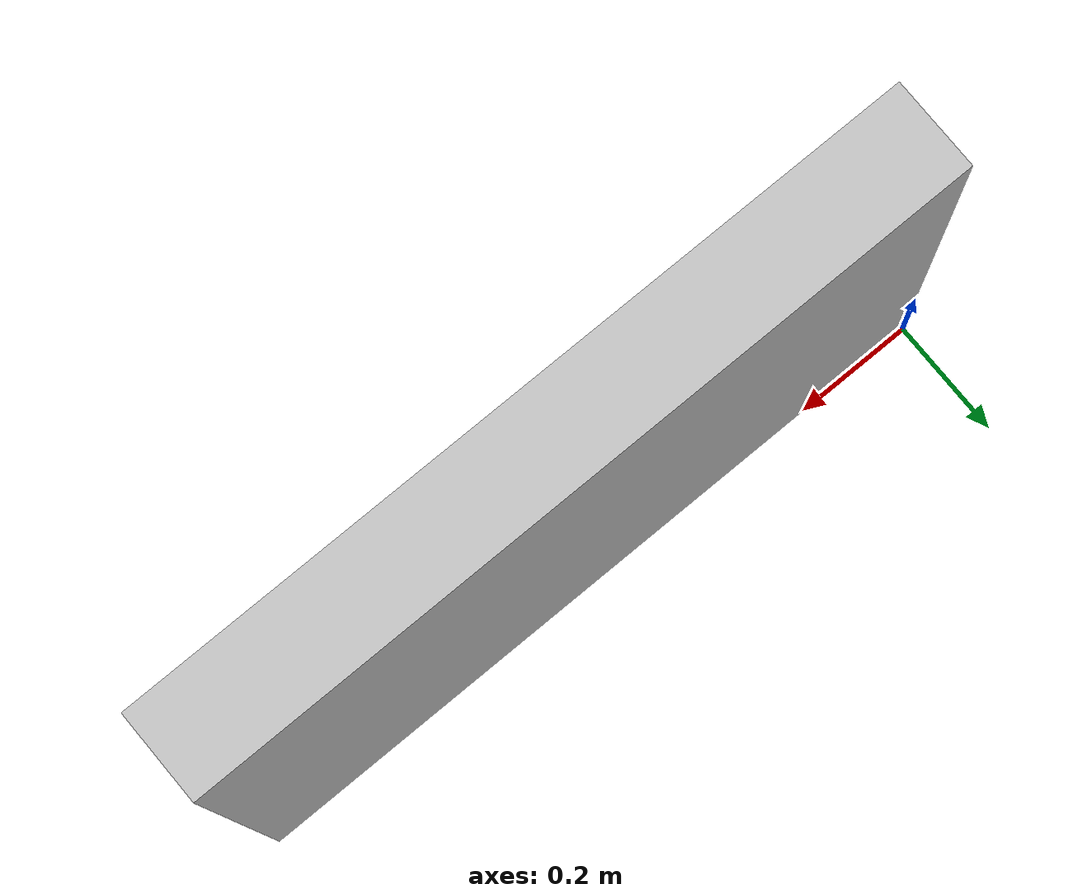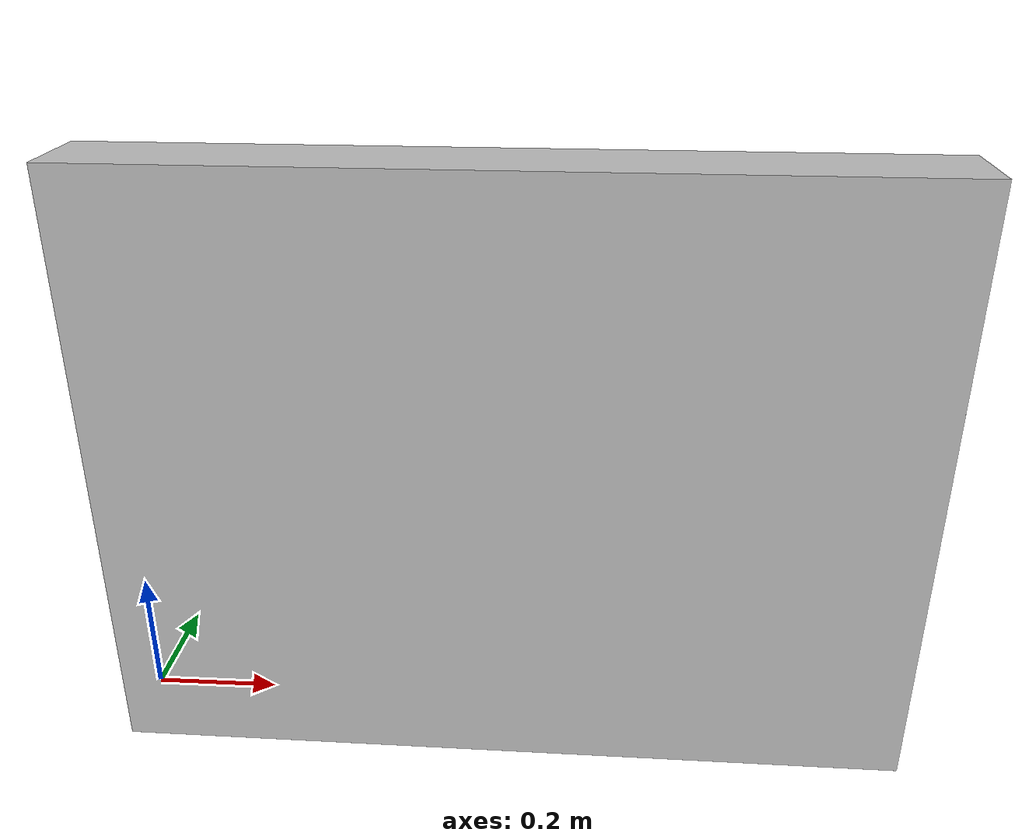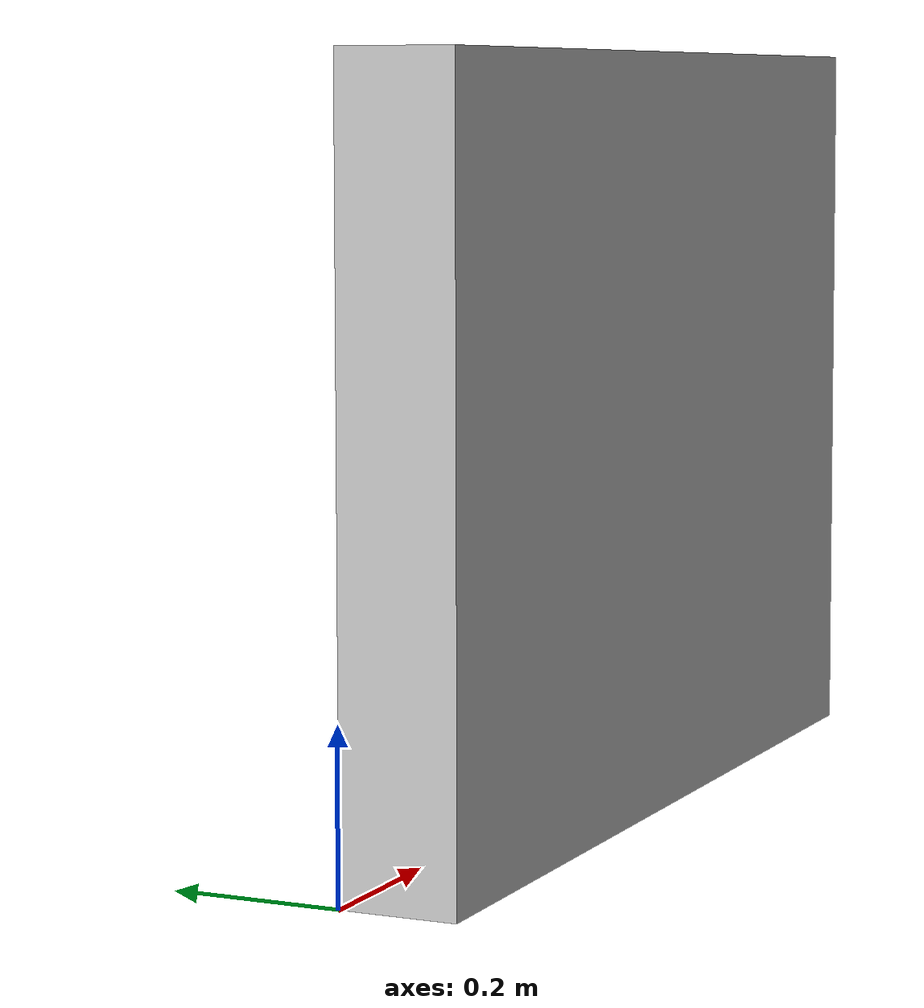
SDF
<?xml version='1.0'?>
<sdf version="1.6">
	<model name="wall">
      <static>true</static>
      <link name="body">
        <collision name = 'collision'>
          <geometry>
            <mesh>
              <uri>model://wall/wall.dae</uri>
              <scale>.3048 .3048 .3048</scale>
            </mesh>
          </geometry>
        </collision>
        <visual name="visual">
          <geometry>
            <mesh>
            	<uri>model://wall/wall.dae</uri>
            	<scale>.3048 .3048 .3048</scale>
            </mesh>
          </geometry>
        </visual>
      </link>
    </model>
</sdf>
